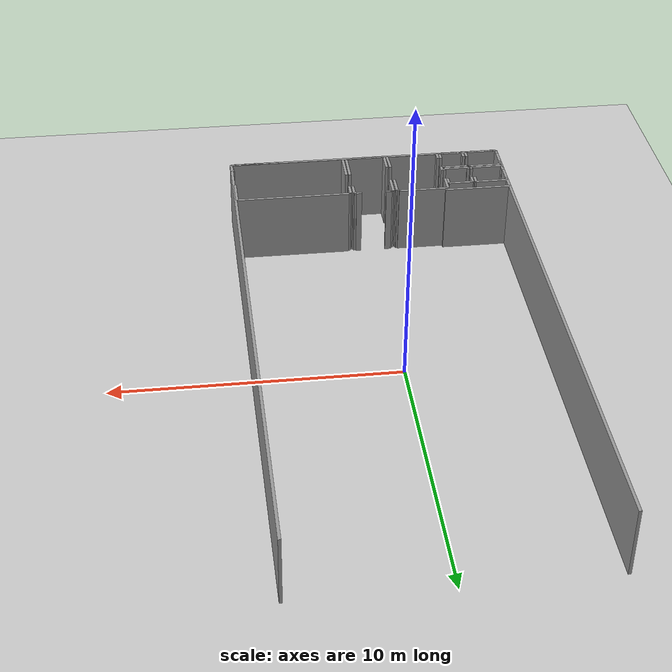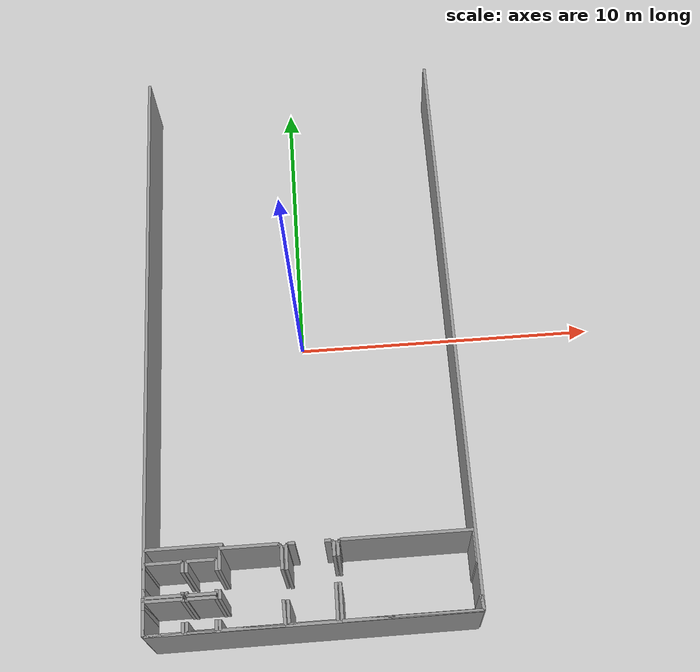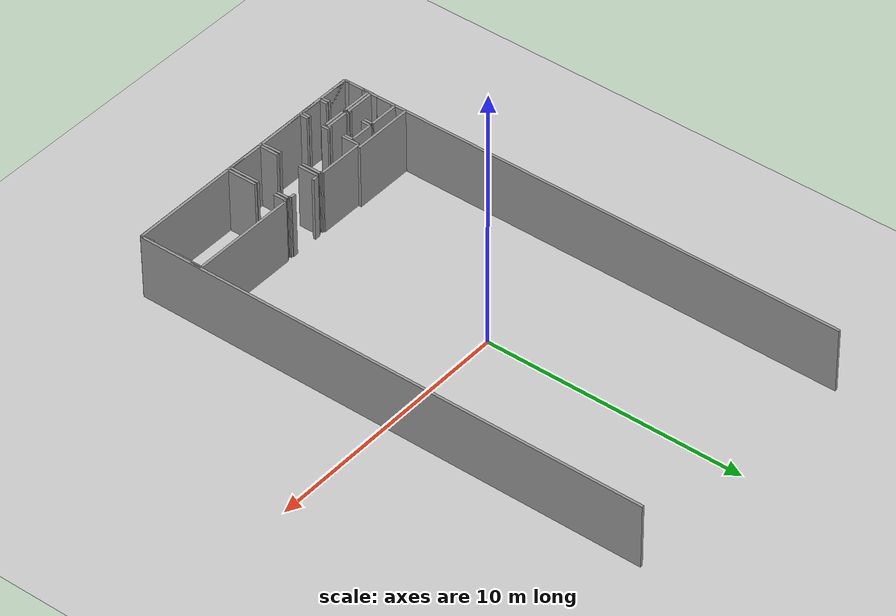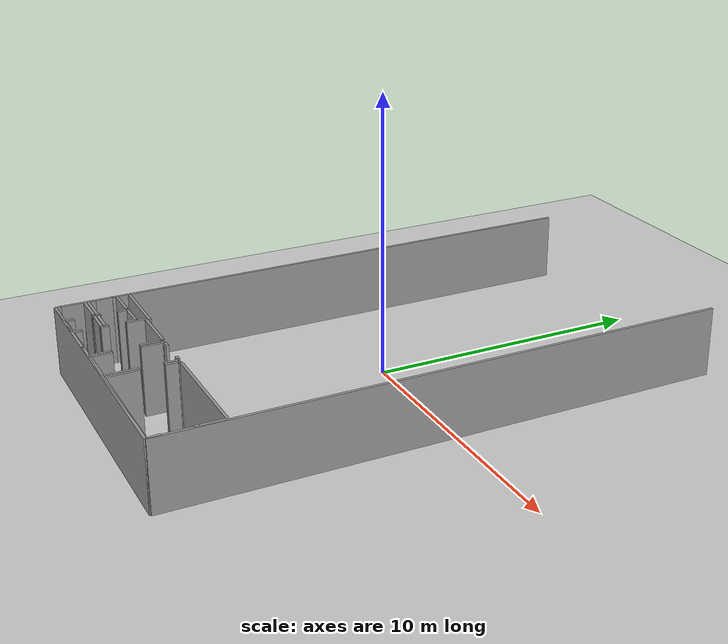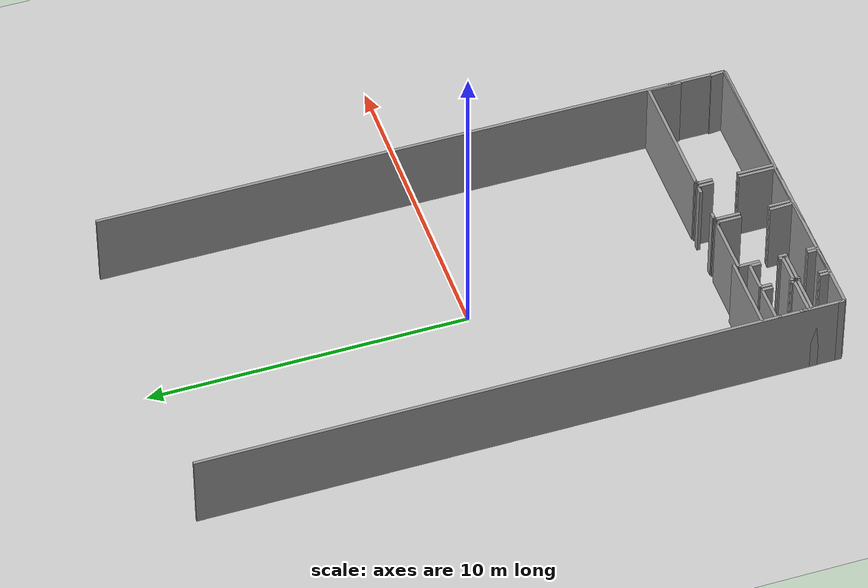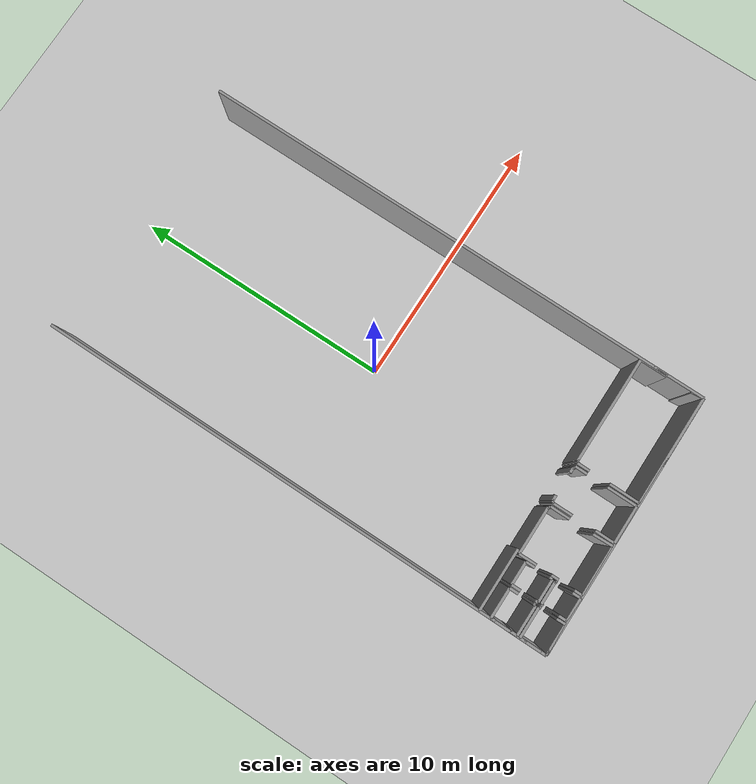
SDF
<sdf version="1.6">
 <world name="default">
  <model name="ground_plane">
   <static>1</static>
   <link name="link">
    <collision name="collision">
     <geometry><plane><normal>0 0 1</normal><size>100 100</size></plane></geometry>
     <surface><friction><ode><mu>100</mu><mu2>50</mu2></ode></friction></surface>
    </collision>
    <visual name="visual">
     <cast_shadows>0</cast_shadows>
     <geometry><plane><normal>0 0 1</normal><size>100 100</size></plane></geometry>
     <material>
      <script><uri>file://media/materials/scripts/gazebo.material</uri><name>Gazebo/Grey</name></script>
     </material>
    </visual>
   </link>
  </model>
  <model name="50009419">
   <static>1</static>
   <link name="Wall_80">
    <collision name="Wall_80_Collision">
     <geometry><box><size>2.39475855067 0.1 2.5</size></box></geometry>
     <pose>1.19737927533 0 1.25 0 0 0</pose>
    </collision>
    <visual name="Wall_80_Visual">
     <pose>1.19737927533 0 1.25 0 0 0</pose>
     <geometry><box><size>2.39475855067 0.1 2.5</size></box></geometry>
     <material>
      <script><uri>file://media/materials/scripts/gazebo.material</uri><name>Gazebo/Grey</name></script>
      <ambient>1 1 1 1</ambient>
     </material>
    </visual>
    <pose>2.39888317787 -17.3842248874 0 0 0 3.14159265359</pose>
   </link>
   <link name="Wall_96">
    <collision name="Wall_96_Collision">
     <geometry><box><size>1.44672885335 0.1 2.5</size></box></geometry>
     <pose>0.723364426677 0 1.25 0 0 0</pose>
    </collision>
    <visual name="Wall_96_Visual">
     <pose>0.723364426677 0 1.25 0 0 0</pose>
     <geometry><box><size>1.44672885335 0.1 2.5</size></box></geometry>
     <material>
      <script><uri>file://media/materials/scripts/gazebo.material</uri><name>Gazebo/Grey</name></script>
      <ambient>1 1 1 1</ambient>
     </material>
    </visual>
    <pose>5.757408465 -19.9529157941 0 0 0 3.14159265359</pose>
   </link>
   <link name="Wall_97">
    <collision name="Wall_97_Collision">
     <geometry><box><size>0.739260105337 0.1 2.5</size></box></geometry>
     <pose>0.369630052668 0 1.25 0 0 0</pose>
    </collision>
    <visual name="Wall_97_Visual">
     <pose>0.369630052668 0 1.25 0 0 0</pose>
     <geometry><box><size>0.739260105337 0.1 2.5</size></box></geometry>
     <material>
      <script><uri>file://media/materials/scripts/gazebo.material</uri><name>Gazebo/Grey</name></script>
      <ambient>1 1 1 1</ambient>
     </material>
    </visual>
    <pose>4.31067961165 -19.9529157941 0 0 0 1.57079632679</pose>
   </link>
   <link name="Wall_98">
    <collision name="Wall_98_Collision">
     <geometry><box><size>0.776445205914 0.1 2.5</size></box></geometry>
     <pose>0.388222602957 0 1.25 0 0 0</pose>
    </collision>
    <visual name="Wall_98_Visual">
     <pose>0.388222602957 0 1.25 0 0 0</pose>
     <geometry><box><size>0.776445205914 0.1 2.5</size></box></geometry>
     <material>
      <script><uri>file://media/materials/scripts/gazebo.material</uri><name>Gazebo/Grey</name></script>
      <ambient>1 1 1 1</ambient>
     </material>
    </visual>
    <pose>4.31067961165 -18.3074433657 0 0 0 1.57079632679</pose>
   </link>
   <link name="Wall_99">
    <collision name="Wall_99_Collision">
     <geometry><box><size>0.0616790405483 0.1 2.5</size></box></geometry>
     <pose>0.0308395202741 0 1.25 0 0 0</pose>
    </collision>
    <visual name="Wall_99_Visual">
     <pose>0.0308395202741 0 1.25 0 0 0</pose>
     <geometry><box><size>0.0616790405483 0.1 2.5</size></box></geometry>
     <material>
      <script><uri>file://media/materials/scripts/gazebo.material</uri><name>Gazebo/Grey</name></script>
      <ambient>1 1 1 1</ambient>
     </material>
    </visual>
    <pose>4.31067961165 -17.5309981598 0 0 0 0.0</pose>
   </link>
   <link name="Wall_100">
    <collision name="Wall_100_Collision">
     <geometry><box><size>0.0280474649407 0.1 2.5</size></box></geometry>
     <pose>0.0140237324703 0 1.25 0 0 0</pose>
    </collision>
    <visual name="Wall_100_Visual">
     <pose>0.0140237324703 0 1.25 0 0 0</pose>
     <geometry><box><size>0.0280474649407 0.1 2.5</size></box></geometry>
     <material>
      <script><uri>file://media/materials/scripts/gazebo.material</uri><name>Gazebo/Grey</name></script>
      <ambient>1 1 1 1</ambient>
     </material>
    </visual>
    <pose>4.3723586522 -17.5309981598 0 0 0 1.57079632679</pose>
   </link>
   <link name="Wall_101">
    <collision name="Wall_101_Collision">
     <geometry><box><size>0.21422679104 0.1 2.5</size></box></geometry>
     <pose>0.10711339552 0 1.25 0 0 0</pose>
    </collision>
    <visual name="Wall_101_Visual">
     <pose>0.10711339552 0 1.25 0 0 0</pose>
     <geometry><box><size>0.21422679104 0.1 2.5</size></box></geometry>
     <material>
      <script><uri>file://media/materials/scripts/gazebo.material</uri><name>Gazebo/Grey</name></script>
      <ambient>1 1 1 1</ambient>
     </material>
    </visual>
    <pose>4.3723586522 -17.5029506948 0 0 0 0.0</pose>
   </link>
   <link name="Wall_102">
    <collision name="Wall_102_Collision">
     <geometry><box><size>0.198807030903 0.1 2.5</size></box></geometry>
     <pose>0.0994035154515 0 1.25 0 0 0</pose>
    </collision>
    <visual name="Wall_102_Visual">
     <pose>0.0994035154515 0 1.25 0 0 0</pose>
     <geometry><box><size>0.198807030903 0.1 2.5</size></box></geometry>
     <material>
      <script><uri>file://media/materials/scripts/gazebo.material</uri><name>Gazebo/Grey</name></script>
      <ambient>1 1 1 1</ambient>
     </material>
    </visual>
    <pose>5.48397740973 -17.5029506948 0 0 0 0.0</pose>
   </link>
   <link name="Wall_103">
    <collision name="Wall_103_Collision">
     <geometry><box><size>0.0335046640015 0.1 2.5</size></box></geometry>
     <pose>0.0167523320008 0 1.25 0 0 0</pose>
    </collision>
    <visual name="Wall_103_Visual">
     <pose>0.0167523320008 0 1.25 0 0 0</pose>
     <geometry><box><size>0.0335046640015 0.1 2.5</size></box></geometry>
     <material>
      <script><uri>file://media/materials/scripts/gazebo.material</uri><name>Gazebo/Grey</name></script>
      <ambient>1 1 1 1</ambient>
     </material>
    </visual>
    <pose>5.68278444064 -17.5029506948 0 0 0 -1.57079632679</pose>
   </link>
   <link name="Wall_104">
    <collision name="Wall_104_Collision">
     <geometry><box><size>0.076527698458 0.1 2.5</size></box></geometry>
     <pose>0.038263849229 0 1.25 0 0 0</pose>
    </collision>
    <visual name="Wall_104_Visual">
     <pose>0.038263849229 0 1.25 0 0 0</pose>
     <geometry><box><size>0.076527698458 0.1 2.5</size></box></geometry>
     <material>
      <script><uri>file://media/materials/scripts/gazebo.material</uri><name>Gazebo/Grey</name></script>
      <ambient>1 1 1 1</ambient>
     </material>
    </visual>
    <pose>5.68278444064 -17.5364553588 0 0 0 0.0</pose>
   </link>
   <link name="Wall_105">
    <collision name="Wall_105_Collision">
     <geometry><box><size>0.463861920173 0.1 2.5</size></box></geometry>
     <pose>0.231930960086 0 1.25 0 0 0</pose>
    </collision>
    <visual name="Wall_105_Visual">
     <pose>0.231930960086 0 1.25 0 0 0</pose>
     <geometry><box><size>0.463861920173 0.1 2.5</size></box></geometry>
     <material>
      <script><uri>file://media/materials/scripts/gazebo.material</uri><name>Gazebo/Grey</name></script>
      <ambient>1 1 1 1</ambient>
     </material>
    </visual>
    <pose>5.7593121391 -17.5364553588 0 0 0 -1.57079632679</pose>
   </link>
   <link name="Wall_106">
    <collision name="Wall_106_Collision">
     <geometry><box><size>1.1496303597 0.1 2.5</size></box></geometry>
     <pose>0.574815179851 0 1.25 0 0 0</pose>
    </collision>
    <visual name="Wall_106_Visual">
     <pose>0.574815179851 0 1.25 0 0 0</pose>
     <geometry><box><size>1.1496303597 0.1 2.5</size></box></geometry>
     <material>
      <script><uri>file://media/materials/scripts/gazebo.material</uri><name>Gazebo/Grey</name></script>
      <ambient>1 1 1 1</ambient>
     </material>
    </visual>
    <pose>5.7593121391 -18.8032870106 0 0 0 -1.57245222858</pose>
   </link>
   <link name="Wall_124">
    <collision name="Wall_124_Collision">
     <geometry><box><size>4.21898597627 0.1 2.5</size></box></geometry>
     <pose>2.10949298813 0 1.25 0 0 0</pose>
    </collision>
    <visual name="Wall_124_Visual">
     <pose>2.10949298813 0 1.25 0 0 0</pose>
     <geometry><box><size>4.21898597627 0.1 2.5</size></box></geometry>
     <material>
      <script><uri>file://media/materials/scripts/gazebo.material</uri><name>Gazebo/Grey</name></script>
      <ambient>1 1 1 1</ambient>
     </material>
    </visual>
    <pose>10.1063519259 -19.9651627641 0 0 0 3.14159265359</pose>
   </link>
   <link name="Wall_125">
    <collision name="Wall_125_Collision">
     <geometry><box><size>1.15711656831 0.1 2.5</size></box></geometry>
     <pose>0.578558284155 0 1.25 0 0 0</pose>
    </collision>
    <visual name="Wall_125_Visual">
     <pose>0.578558284155 0 1.25 0 0 0</pose>
     <geometry><box><size>1.15711656831 0.1 2.5</size></box></geometry>
     <material>
      <script><uri>file://media/materials/scripts/gazebo.material</uri><name>Gazebo/Grey</name></script>
      <ambient>1 1 1 1</ambient>
     </material>
    </visual>
    <pose>5.88736594962 -19.9651627641 0 0 0 1.57079632679</pose>
   </link>
   <link name="Wall_126">
    <collision name="Wall_126_Collision">
     <geometry><box><size>0.469572942446 0.1 2.5</size></box></geometry>
     <pose>0.234786471223 0 1.25 0 0 0</pose>
    </collision>
    <visual name="Wall_126_Visual">
     <pose>0.234786471223 0 1.25 0 0 0</pose>
     <geometry><box><size>0.469572942446 0.1 2.5</size></box></geometry>
     <material>
      <script><uri>file://media/materials/scripts/gazebo.material</uri><name>Gazebo/Grey</name></script>
      <ambient>1 1 1 1</ambient>
     </material>
    </visual>
    <pose>5.88736594962 -18.0079954312 0 0 0 1.57079632679</pose>
   </link>
   <link name="Wall_127">
    <collision name="Wall_127_Collision">
     <geometry><box><size>0.0741163779428 0.1 2.5</size></box></geometry>
     <pose>0.0370581889714 0 1.25 0 0 0</pose>
    </collision>
    <visual name="Wall_127_Visual">
     <pose>0.0370581889714 0 1.25 0 0 0</pose>
     <geometry><box><size>0.0741163779428 0.1 2.5</size></box></geometry>
     <material>
      <script><uri>file://media/materials/scripts/gazebo.material</uri><name>Gazebo/Grey</name></script>
      <ambient>1 1 1 1</ambient>
     </material>
    </visual>
    <pose>5.88736594962 -17.5384224887 0 0 0 0.0</pose>
   </link>
   <link name="Wall_128">
    <collision name="Wall_128_Collision">
     <geometry><box><size>0.036423630941 0.1 2.5</size></box></geometry>
     <pose>0.0182118154705 0 1.25 0 0 0</pose>
    </collision>
    <visual name="Wall_128_Visual">
     <pose>0.0182118154705 0 1.25 0 0 0</pose>
     <geometry><box><size>0.036423630941 0.1 2.5</size></box></geometry>
     <material>
      <script><uri>file://media/materials/scripts/gazebo.material</uri><name>Gazebo/Grey</name></script>
      <ambient>1 1 1 1</ambient>
     </material>
    </visual>
    <pose>5.96148232756 -17.5384224887 0 0 0 1.57079632679</pose>
   </link>
   <link name="Wall_129">
    <collision name="Wall_129_Collision">
     <geometry><box><size>4.09943524335 0.1 2.5</size></box></geometry>
     <pose>2.04971762168 0 1.25 0 0 0</pose>
    </collision>
    <visual name="Wall_129_Visual">
     <pose>2.04971762168 0 1.25 0 0 0</pose>
     <geometry><box><size>4.09943524335 0.1 2.5</size></box></geometry>
     <material>
      <script><uri>file://media/materials/scripts/gazebo.material</uri><name>Gazebo/Grey</name></script>
      <ambient>1 1 1 1</ambient>
     </material>
    </visual>
    <pose>5.96148232756 -17.5019988578 0 0 0 0.0</pose>
   </link>
   <link name="Wall_130">
    <collision name="Wall_130_Collision">
     <geometry><box><size>1.03578907291 0.1 2.5</size></box></geometry>
     <pose>0.517894536455 0 1.25 0 0 0</pose>
    </collision>
    <visual name="Wall_130_Visual">
     <pose>0.517894536455 0 1.25 0 0 0</pose>
     <geometry><box><size>1.03578907291 0.1 2.5</size></box></geometry>
     <material>
      <script><uri>file://media/materials/scripts/gazebo.material</uri><name>Gazebo/Grey</name></script>
      <ambient>1 1 1 1</ambient>
     </material>
    </visual>
    <pose>10.0609175709 -17.5019988578 0 0 0 -1.57079632679</pose>
   </link>
   <link name="Wall_131">
    <collision name="Wall_131_Collision">
     <geometry><box><size>0.46121913124 0.1 2.5</size></box></geometry>
     <pose>0.23060956562 0 1.25 0 0 0</pose>
    </collision>
    <visual name="Wall_131_Visual">
     <pose>0.23060956562 0 1.25 0 0 0</pose>
     <geometry><box><size>0.46121913124 0.1 2.5</size></box></geometry>
     <material>
      <script><uri>file://media/materials/scripts/gazebo.material</uri><name>Gazebo/Grey</name></script>
      <ambient>1 1 1 1</ambient>
     </material>
    </visual>
    <pose>10.0609175709 -19.5061869408 0 0 0 -1.47212704423</pose>
   </link>
   <link name="Wall_132">
    <collision name="Wall_132_Collision">
     <geometry><box><size>1.91928421854 0.1 2.5</size></box></geometry>
     <pose>0.959642109271 0 1.25 0 0 0</pose>
    </collision>
    <visual name="Wall_132_Visual">
     <pose>0.959642109271 0 1.25 0 0 0</pose>
     <geometry><box><size>1.91928421854 0.1 2.5</size></box></geometry>
     <material>
      <script><uri>file://media/materials/scripts/gazebo.material</uri><name>Gazebo/Grey</name></script>
      <ambient>1 1 1 1</ambient>
     </material>
    </visual>
    <pose>4.20115489562 -19.9612919601 0 0 0 3.14159265359</pose>
   </link>
   <link name="Wall_133">
    <collision name="Wall_133_Collision">
     <geometry><box><size>0.312900564757 0.1 2.5</size></box></geometry>
     <pose>0.156450282378 0 1.25 0 0 0</pose>
    </collision>
    <visual name="Wall_133_Visual">
     <pose>0.156450282378 0 1.25 0 0 0</pose>
     <geometry><box><size>0.312900564757 0.1 2.5</size></box></geometry>
     <material>
      <script><uri>file://media/materials/scripts/gazebo.material</uri><name>Gazebo/Grey</name></script>
      <ambient>1 1 1 1</ambient>
     </material>
    </visual>
    <pose>2.28187067707 -19.9612919601 0 0 0 1.57079632679</pose>
   </link>
   <link name="Wall_134">
    <collision name="Wall_134_Collision">
     <geometry><box><size>0.279522812361 0.1 2.5</size></box></geometry>
     <pose>0.139761406181 0 1.25 0 0 0</pose>
    </collision>
    <visual name="Wall_134_Visual">
     <pose>0.139761406181 0 1.25 0 0 0</pose>
     <geometry><box><size>0.279522812361 0.1 2.5</size></box></geometry>
     <material>
      <script><uri>file://media/materials/scripts/gazebo.material</uri><name>Gazebo/Grey</name></script>
      <ambient>1 1 1 1</ambient>
     </material>
    </visual>
    <pose>2.28187067707 -19.0350276033 0 0 0 1.57079632679</pose>
   </link>
   <link name="Wall_135">
    <collision name="Wall_135_Collision">
     <geometry><box><size>0.671996954121 0.1 2.5</size></box></geometry>
     <pose>0.335998477061 0 1.25 0 0 0</pose>
    </collision>
    <visual name="Wall_135_Visual">
     <pose>0.335998477061 0 1.25 0 0 0</pose>
     <geometry><box><size>0.671996954121 0.1 2.5</size></box></geometry>
     <material>
      <script><uri>file://media/materials/scripts/gazebo.material</uri><name>Gazebo/Grey</name></script>
      <ambient>1 1 1 1</ambient>
     </material>
    </visual>
    <pose>2.28187067707 -18.1670156736 0 0 0 1.57079632679</pose>
   </link>
   <link name="Wall_136">
    <collision name="Wall_136_Collision">
     <geometry><box><size>1.82346595596 0.1 2.5</size></box></geometry>
     <pose>0.911732977981 0 1.25 0 0 0</pose>
    </collision>
    <visual name="Wall_136_Visual">
     <pose>0.911732977981 0 1.25 0 0 0</pose>
     <geometry><box><size>1.82346595596 0.1 2.5</size></box></geometry>
     <material>
      <script><uri>file://media/materials/scripts/gazebo.material</uri><name>Gazebo/Grey</name></script>
      <ambient>1 1 1 1</ambient>
     </material>
    </visual>
    <pose>2.28187067707 -17.4950187195 0 0 0 0.0</pose>
   </link>
   <link name="Wall_137">
    <collision name="Wall_137_Collision">
     <geometry><box><size>0.0473380290628 0.1 2.5</size></box></geometry>
     <pose>0.0236690145314 0 1.25 0 0 0</pose>
    </collision>
    <visual name="Wall_137_Visual">
     <pose>0.0236690145314 0 1.25 0 0 0</pose>
     <geometry><box><size>0.0473380290628 0.1 2.5</size></box></geometry>
     <material>
      <script><uri>file://media/materials/scripts/gazebo.material</uri><name>Gazebo/Grey</name></script>
      <ambient>1 1 1 1</ambient>
     </material>
    </visual>
    <pose>4.10533663304 -17.4950187195 0 0 0 -1.57079632679</pose>
   </link>
   <link name="Wall_138">
    <collision name="Wall_138_Collision">
     <geometry><box><size>0.0662478583667 0.1 2.5</size></box></geometry>
     <pose>0.0331239291833 0 1.25 0 0 0</pose>
    </collision>
    <visual name="Wall_138_Visual">
     <pose>0.0331239291833 0 1.25 0 0 0</pose>
     <geometry><box><size>0.0662478583667 0.1 2.5</size></box></geometry>
     <material>
      <script><uri>file://media/materials/scripts/gazebo.material</uri><name>Gazebo/Grey</name></script>
      <ambient>1 1 1 1</ambient>
     </material>
    </visual>
    <pose>4.10533663304 -17.5423567485 0 0 0 0.0</pose>
   </link>
   <link name="Wall_139">
    <collision name="Wall_139_Collision">
     <geometry><box><size>0.750872517292 0.1 2.5</size></box></geometry>
     <pose>0.375436258646 0 1.25 0 0 0</pose>
    </collision>
    <visual name="Wall_139_Visual">
     <pose>0.375436258646 0 1.25 0 0 0</pose>
     <geometry><box><size>0.750872517292 0.1 2.5</size></box></geometry>
     <material>
      <script><uri>file://media/materials/scripts/gazebo.material</uri><name>Gazebo/Grey</name></script>
      <ambient>1 1 1 1</ambient>
     </material>
    </visual>
    <pose>4.1715844914 -17.5423567485 0 0 0 -1.57079632679</pose>
   </link>
   <link name="Wall_140">
    <collision name="Wall_140_Collision">
     <geometry><box><size>0.759951118778 0.1 2.5</size></box></geometry>
     <pose>0.379975559389 0 1.25 0 0 0</pose>
    </collision>
    <visual name="Wall_140_Visual">
     <pose>0.379975559389 0 1.25 0 0 0</pose>
     <geometry><box><size>0.759951118778 0.1 2.5</size></box></geometry>
     <material>
      <script><uri>file://media/materials/scripts/gazebo.material</uri><name>Gazebo/Grey</name></script>
      <ambient>1 1 1 1</ambient>
     </material>
    </visual>
    <pose>4.1715844914 -19.2019163653 0 0 0 -1.53187557194</pose>
   </link>
   <link name="Wall_141">
    <collision name="Wall_141_Collision">
     <geometry><box><size>0.877022653722 0.1 2.5</size></box></geometry>
     <pose>0.438511326861 0 1.25 0 0 0</pose>
    </collision>
    <visual name="Wall_141_Visual">
     <pose>0.438511326861 0 1.25 0 0 0</pose>
     <geometry><box><size>0.877022653722 0.1 2.5</size></box></geometry>
     <material>
      <script><uri>file://media/materials/scripts/gazebo.material</uri><name>Gazebo/Grey</name></script>
      <ambient>1 1 1 1</ambient>
     </material>
    </visual>
    <pose>2.17767624849 -19.9558347611 0 0 0 3.14159265359</pose>
   </link>
   <link name="Wall_142">
    <collision name="Wall_142_Collision">
     <geometry><box><size>0.309156672378 0.1 2.5</size></box></geometry>
     <pose>0.154578336189 0 1.25 0 0 0</pose>
    </collision>
    <visual name="Wall_142_Visual">
     <pose>0.154578336189 0 1.25 0 0 0</pose>
     <geometry><box><size>0.309156672378 0.1 2.5</size></box></geometry>
     <material>
      <script><uri>file://media/materials/scripts/gazebo.material</uri><name>Gazebo/Grey</name></script>
      <ambient>1 1 1 1</ambient>
     </material>
    </visual>
    <pose>1.30065359477 -19.9558347611 0 0 0 1.57079632679</pose>
   </link>
   <link name="Wall_143">
    <collision name="Wall_143_Collision">
     <geometry><box><size>0.0795735770036 0.1 2.5</size></box></geometry>
     <pose>0.0397867885018 0 1.25 0 0 0</pose>
    </collision>
    <visual name="Wall_143_Visual">
     <pose>0.0397867885018 0 1.25 0 0 0</pose>
     <geometry><box><size>0.0795735770036 0.1 2.5</size></box></geometry>
     <material>
      <script><uri>file://media/materials/scripts/gazebo.material</uri><name>Gazebo/Grey</name></script>
      <ambient>1 1 1 1</ambient>
     </material>
    </visual>
    <pose>1.30065359477 -19.0508280982 0 0 0 1.57079632679</pose>
   </link>
   <link name="Wall_144">
    <collision name="Wall_144_Collision">
     <geometry><box><size>0.875816993464 0.1 2.5</size></box></geometry>
     <pose>0.437908496732 0 1.25 0 0 0</pose>
    </collision>
    <visual name="Wall_144_Visual">
     <pose>0.437908496732 0 1.25 0 0 0</pose>
     <geometry><box><size>0.875816993464 0.1 2.5</size></box></geometry>
     <material>
      <script><uri>file://media/materials/scripts/gazebo.material</uri><name>Gazebo/Grey</name></script>
      <ambient>1 1 1 1</ambient>
     </material>
    </visual>
    <pose>1.30065359477 -18.9712545212 0 0 0 0.0</pose>
   </link>
   <link name="Wall_145">
    <collision name="Wall_145_Collision">
     <geometry><box><size>0.0685957230789 0.1 2.5</size></box></geometry>
     <pose>0.0342978615394 0 1.25 0 0 0</pose>
    </collision>
    <visual name="Wall_145_Visual">
     <pose>0.0342978615394 0 1.25 0 0 0</pose>
     <geometry><box><size>0.0685957230789 0.1 2.5</size></box></geometry>
     <material>
      <script><uri>file://media/materials/scripts/gazebo.material</uri><name>Gazebo/Grey</name></script>
      <ambient>1 1 1 1</ambient>
     </material>
    </visual>
    <pose>2.17647058824 -18.9712545212 0 0 0 -1.57079632679</pose>
   </link>
   <link name="Wall_146">
    <collision name="Wall_146_Collision">
     <geometry><box><size>0.315504556328 0.1 2.5</size></box></geometry>
     <pose>0.157752278164 0 1.25 0 0 0</pose>
    </collision>
    <visual name="Wall_146_Visual">
     <pose>0.157752278164 0 1.25 0 0 0</pose>
     <geometry><box><size>0.315504556328 0.1 2.5</size></box></geometry>
     <material>
      <script><uri>file://media/materials/scripts/gazebo.material</uri><name>Gazebo/Grey</name></script>
      <ambient>1 1 1 1</ambient>
     </material>
    </visual>
    <pose>2.17647058824 -19.6403325084 0 0 0 -1.56697494556</pose>
   </link>
   <link name="Wall_147">
    <collision name="Wall_147_Collision">
     <geometry><box><size>1.18998667428 0.1 2.5</size></box></geometry>
     <pose>0.594993337141 0 1.25 0 0 0</pose>
    </collision>
    <visual name="Wall_147_Visual">
     <pose>0.594993337141 0 1.25 0 0 0</pose>
     <geometry><box><size>1.18998667428 0.1 2.5</size></box></geometry>
     <material>
      <script><uri>file://media/materials/scripts/gazebo.material</uri><name>Gazebo/Grey</name></script>
      <ambient>1 1 1 1</ambient>
     </material>
    </visual>
    <pose>1.18998667428 -19.9739831208 0 0 0 3.14159265359</pose>
   </link>
   <link name="Wall_148">
    <collision name="Wall_148_Collision">
     <geometry><box><size>0.206294815661 0.1 2.5</size></box></geometry>
     <pose>0.10314740783 0 1.25 0 0 0</pose>
    </collision>
    <visual name="Wall_148_Visual">
     <pose>0.10314740783 0 1.25 0 0 0</pose>
     <geometry><box><size>0.206294815661 0.1 2.5</size></box></geometry>
     <material>
      <script><uri>file://media/materials/scripts/gazebo.material</uri><name>Gazebo/Grey</name></script>
      <ambient>1 1 1 1</ambient>
     </material>
    </visual>
    <pose>0.0 -19.9739831208 0 0 0 1.57079632679</pose>
   </link>
   <link name="Wall_149">
    <collision name="Wall_149_Collision">
     <geometry><box><size>0.244749032299 0.1 2.5</size></box></geometry>
     <pose>0.12237451615 0 1.25 0 0 0</pose>
    </collision>
    <visual name="Wall_149_Visual">
     <pose>0.12237451615 0 1.25 0 0 0</pose>
     <geometry><box><size>0.244749032299 0.1 2.5</size></box></geometry>
     <material>
      <script><uri>file://media/materials/scripts/gazebo.material</uri><name>Gazebo/Grey</name></script>
      <ambient>1 1 1 1</ambient>
     </material>
    </visual>
    <pose>0.0 -19.2015356304 0 0 0 1.57079632679</pose>
   </link>
   <link name="Wall_150">
    <collision name="Wall_150_Collision">
     <geometry><box><size>1.18040484802 0.1 2.5</size></box></geometry>
     <pose>0.590202424012 0 1.25 0 0 0</pose>
    </collision>
    <visual name="Wall_150_Visual">
     <pose>0.590202424012 0 1.25 0 0 0</pose>
     <geometry><box><size>1.18040484802 0.1 2.5</size></box></geometry>
     <material>
      <script><uri>file://media/materials/scripts/gazebo.material</uri><name>Gazebo/Grey</name></script>
      <ambient>1 1 1 1</ambient>
     </material>
    </visual>
    <pose>0.0 -18.9567865981 0 0 0 0.0</pose>
   </link>
   <link name="Wall_151">
    <collision name="Wall_151_Collision">
     <geometry><box><size>0.0762738752459 0.1 2.5</size></box></geometry>
     <pose>0.0381369376229 0 1.25 0 0 0</pose>
    </collision>
    <visual name="Wall_151_Visual">
     <pose>0.0381369376229 0 1.25 0 0 0</pose>
     <geometry><box><size>0.0762738752459 0.1 2.5</size></box></geometry>
     <material>
      <script><uri>file://media/materials/scripts/gazebo.material</uri><name>Gazebo/Grey</name></script>
      <ambient>1 1 1 1</ambient>
     </material>
    </visual>
    <pose>1.18040484802 -18.9567865981 0 0 0 -1.57079632679</pose>
   </link>
   <link name="Wall_152">
    <collision name="Wall_152_Collision">
     <geometry><box><size>0.33061670006 0.1 2.5</size></box></geometry>
     <pose>0.16530835003 0 1.25 0 0 0</pose>
    </collision>
    <visual name="Wall_152_Visual">
     <pose>0.16530835003 0 1.25 0 0 0</pose>
     <geometry><box><size>0.33061670006 0.1 2.5</size></box></geometry>
     <material>
      <script><uri>file://media/materials/scripts/gazebo.material</uri><name>Gazebo/Grey</name></script>
      <ambient>1 1 1 1</ambient>
     </material>
    </visual>
    <pose>1.18040484802 -19.6435052986 0 0 0 -1.54181059159</pose>
   </link>
   <link name="Wall_153">
    <collision name="Wall_153_Collision">
     <geometry><box><size>0.899739831208 0.1 2.5</size></box></geometry>
     <pose>0.449869915604 0 1.25 0 0 0</pose>
    </collision>
    <visual name="Wall_153_Visual">
     <pose>0.449869915604 0 1.25 0 0 0</pose>
     <geometry><box><size>0.899739831208 0.1 2.5</size></box></geometry>
     <material>
      <script><uri>file://media/materials/scripts/gazebo.material</uri><name>Gazebo/Grey</name></script>
      <ambient>1 1 1 1</ambient>
     </material>
    </visual>
    <pose>2.19189034837 -18.8552573133 0 0 0 3.14159265359</pose>
   </link>
   <link name="Wall_154">
    <collision name="Wall_154_Collision">
     <geometry><box><size>0.108826702202 0.1 2.5</size></box></geometry>
     <pose>0.054413351101 0 1.25 0 0 0</pose>
    </collision>
    <visual name="Wall_154_Visual">
     <pose>0.054413351101 0 1.25 0 0 0</pose>
     <geometry><box><size>0.108826702202 0.1 2.5</size></box></geometry>
     <material>
      <script><uri>file://media/materials/scripts/gazebo.material</uri><name>Gazebo/Grey</name></script>
      <ambient>1 1 1 1</ambient>
     </material>
    </visual>
    <pose>1.29215051716 -18.8552573133 0 0 0 1.57079632679</pose>
   </link>
   <link name="Wall_155">
    <collision name="Wall_155_Collision">
     <geometry><box><size>0.350466400152 0.1 2.5</size></box></geometry>
     <pose>0.175233200076 0 1.25 0 0 0</pose>
    </collision>
    <visual name="Wall_155_Visual">
     <pose>0.175233200076 0 1.25 0 0 0</pose>
     <geometry><box><size>0.350466400152 0.1 2.5</size></box></geometry>
     <material>
      <script><uri>file://media/materials/scripts/gazebo.material</uri><name>Gazebo/Grey</name></script>
      <ambient>1 1 1 1</ambient>
     </material>
    </visual>
    <pose>1.29215051716 -18.1713306682 0 0 0 1.57079632679</pose>
   </link>
   <link name="Wall_156">
    <collision name="Wall_156_Collision">
     <geometry><box><size>0.89789961292 0.1 2.5</size></box></geometry>
     <pose>0.44894980646 0 1.25 0 0 0</pose>
    </collision>
    <visual name="Wall_156_Visual">
     <pose>0.44894980646 0 1.25 0 0 0</pose>
     <geometry><box><size>0.89789961292 0.1 2.5</size></box></geometry>
     <material>
      <script><uri>file://media/materials/scripts/gazebo.material</uri><name>Gazebo/Grey</name></script>
      <ambient>1 1 1 1</ambient>
     </material>
    </visual>
    <pose>1.29215051716 -17.820864268 0 0 0 0.0</pose>
   </link>
   <link name="Wall_157">
    <collision name="Wall_157_Collision">
     <geometry><box><size>0.346341772955 0.1 2.5</size></box></geometry>
     <pose>0.173170886478 0 1.25 0 0 0</pose>
    </collision>
    <visual name="Wall_157_Visual">
     <pose>0.173170886478 0 1.25 0 0 0</pose>
     <geometry><box><size>0.346341772955 0.1 2.5</size></box></geometry>
     <material>
      <script><uri>file://media/materials/scripts/gazebo.material</uri><name>Gazebo/Grey</name></script>
      <ambient>1 1 1 1</ambient>
     </material>
    </visual>
    <pose>2.19005013008 -17.820864268 0 0 0 -1.57079632679</pose>
   </link>
   <link name="Wall_158">
    <collision name="Wall_158_Collision">
     <geometry><box><size>0.112458740186 0.1 2.5</size></box></geometry>
     <pose>0.0562293700931 0 1.25 0 0 0</pose>
    </collision>
    <visual name="Wall_158_Visual">
     <pose>0.0562293700931 0 1.25 0 0 0</pose>
     <geometry><box><size>0.112458740186 0.1 2.5</size></box></geometry>
     <material>
      <script><uri>file://media/materials/scripts/gazebo.material</uri><name>Gazebo/Grey</name></script>
      <ambient>1 1 1 1</ambient>
     </material>
    </visual>
    <pose>2.19005013008 -18.7428136303 0 0 0 -1.55443209918</pose>
   </link>
   <link name="Wall_159">
    <collision name="Wall_159_Collision">
     <geometry><box><size>1.16416016245 0.1 2.5</size></box></geometry>
     <pose>0.582080081223 0 1.25 0 0 0</pose>
    </collision>
    <visual name="Wall_159_Visual">
     <pose>0.582080081223 0 1.25 0 0 0</pose>
     <geometry><box><size>1.16416016245 0.1 2.5</size></box></geometry>
     <material>
      <script><uri>file://media/materials/scripts/gazebo.material</uri><name>Gazebo/Grey</name></script>
      <ambient>1 1 1 1</ambient>
     </material>
    </visual>
    <pose>1.17526492798 -18.8435814455 0 0 0 3.14159265359</pose>
   </link>
   <link name="Wall_160">
    <collision name="Wall_160_Collision">
     <geometry><box><size>0.271908115997 0.1 2.5</size></box></geometry>
     <pose>0.135954057999 0 1.25 0 0 0</pose>
    </collision>
    <visual name="Wall_160_Visual">
     <pose>0.135954057999 0 1.25 0 0 0</pose>
     <geometry><box><size>0.271908115997 0.1 2.5</size></box></geometry>
     <material>
      <script><uri>file://media/materials/scripts/gazebo.material</uri><name>Gazebo/Grey</name></script>
      <ambient>1 1 1 1</ambient>
     </material>
    </visual>
    <pose>0.0111047655308 -18.8435814455 0 0 0 1.57079632679</pose>
   </link>
   <link name="Wall_161">
    <collision name="Wall_161_Collision">
     <geometry><box><size>0.164604353068 0.1 2.5</size></box></geometry>
     <pose>0.082302176534 0 1.25 0 0 0</pose>
    </collision>
    <visual name="Wall_161_Visual">
     <pose>0.082302176534 0 1.25 0 0 0</pose>
     <geometry><box><size>0.164604353068 0.1 2.5</size></box></geometry>
     <material>
      <script><uri>file://media/materials/scripts/gazebo.material</uri><name>Gazebo/Grey</name></script>
      <ambient>1 1 1 1</ambient>
     </material>
    </visual>
    <pose>0.0111047655308 -17.9890856019 0 0 0 1.57079632679</pose>
   </link>
   <link name="Wall_162">
    <collision name="Wall_162_Collision">
     <geometry><box><size>1.15851259598 0.1 2.5</size></box></geometry>
     <pose>0.579256297988 0 1.25 0 0 0</pose>
    </collision>
    <visual name="Wall_162_Visual">
     <pose>0.579256297988 0 1.25 0 0 0</pose>
     <geometry><box><size>1.15851259598 0.1 2.5</size></box></geometry>
     <material>
      <script><uri>file://media/materials/scripts/gazebo.material</uri><name>Gazebo/Grey</name></script>
      <ambient>1 1 1 1</ambient>
     </material>
    </visual>
    <pose>0.0111047655308 -17.8244812488 0 0 0 0.0</pose>
   </link>
   <link name="Wall_163">
    <collision name="Wall_163_Collision">
     <geometry><box><size>0.334729361 0.1 2.5</size></box></geometry>
     <pose>0.1673646805 0 1.25 0 0 0</pose>
    </collision>
    <visual name="Wall_163_Visual">
     <pose>0.1673646805 0 1.25 0 0 0</pose>
     <geometry><box><size>0.334729361 0.1 2.5</size></box></geometry>
     <material>
      <script><uri>file://media/materials/scripts/gazebo.material</uri><name>Gazebo/Grey</name></script>
      <ambient>1 1 1 1</ambient>
     </material>
    </visual>
    <pose>1.16961736151 -17.8244812488 0 0 0 -1.57079632679</pose>
   </link>
   <link name="Wall_164">
    <collision name="Wall_164_Collision">
     <geometry><box><size>0.0987719079802 0.1 2.5</size></box></geometry>
     <pose>0.0493859539901 0 1.25 0 0 0</pose>
    </collision>
    <visual name="Wall_164_Visual">
     <pose>0.0493859539901 0 1.25 0 0 0</pose>
     <geometry><box><size>0.0987719079802 0.1 2.5</size></box></geometry>
     <material>
      <script><uri>file://media/materials/scripts/gazebo.material</uri><name>Gazebo/Grey</name></script>
      <ambient>1 1 1 1</ambient>
     </material>
    </visual>
    <pose>1.16961736151 -18.7449711276 0 0 0 -1.51358726408</pose>
   </link>
   <link name="Wall_165">
    <collision name="Wall_165_Collision">
     <geometry><box><size>19.9739831208 0.1 2.5</size></box></geometry>
     <pose>9.98699156038 0 1.25 0 0 0</pose>
    </collision>
    <visual name="Wall_165_Visual">
     <pose>9.98699156038 0 1.25 0 0 0</pose>
     <geometry><box><size>19.9739831208 0.1 2.5</size></box></geometry>
     <material>
      <script><uri>file://media/materials/scripts/gazebo.material</uri><name>Gazebo/Grey</name></script>
      <ambient>1 1 1 1</ambient>
     </material>
    </visual>
    <pose>10.1063519259 -19.9739831208 0 0 0 1.57079632679</pose>
   </link>
   <link name="Wall_166">
    <collision name="Wall_166_Collision">
     <geometry><box><size>10.1063519259 0.1 2.5</size></box></geometry>
     <pose>5.05317596294 0 1.25 0 0 0</pose>
    </collision>
    <visual name="Wall_166_Visual">
     <pose>5.05317596294 0 1.25 0 0 0</pose>
     <geometry><box><size>10.1063519259 0.1 2.5</size></box></geometry>
     <material>
      <script><uri>file://media/materials/scripts/gazebo.material</uri><name>Gazebo/Grey</name></script>
      <ambient>1 1 1 1</ambient>
     </material>
    </visual>
    <pose>10.1063519259 -19.9739831208 0 0 0 3.14159265359</pose>
   </link>
   <link name="Wall_167">
    <collision name="Wall_167_Collision">
     <geometry><box><size>19.9739831208 0.1 2.5</size></box></geometry>
     <pose>9.98699156038 0 1.25 0 0 0</pose>
    </collision>
    <visual name="Wall_167_Visual">
     <pose>9.98699156038 0 1.25 0 0 0</pose>
     <geometry><box><size>19.9739831208 0.1 2.5</size></box></geometry>
     <material>
      <script><uri>file://media/materials/scripts/gazebo.material</uri><name>Gazebo/Grey</name></script>
      <ambient>1 1 1 1</ambient>
     </material>
    </visual>
    <pose>0.0 -19.9739831208 0 0 0 1.57079632679</pose>
   </link>
   <pose>-5.0 9.97398312076 0 0 0 0</pose>
  </model>
 </world>
</sdf>
